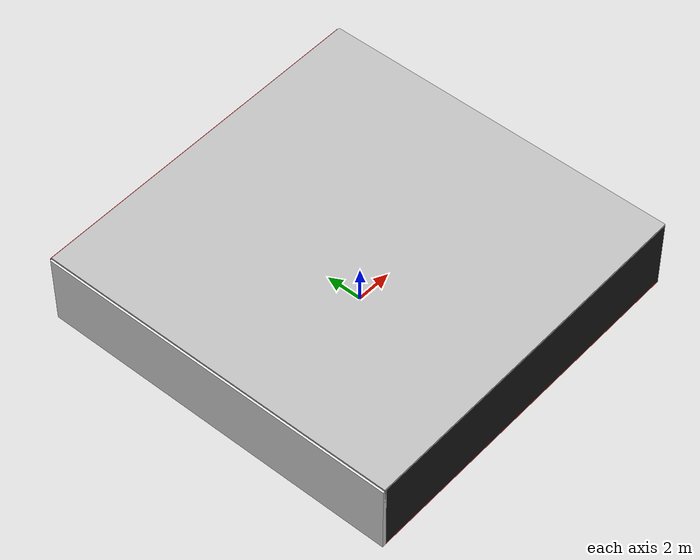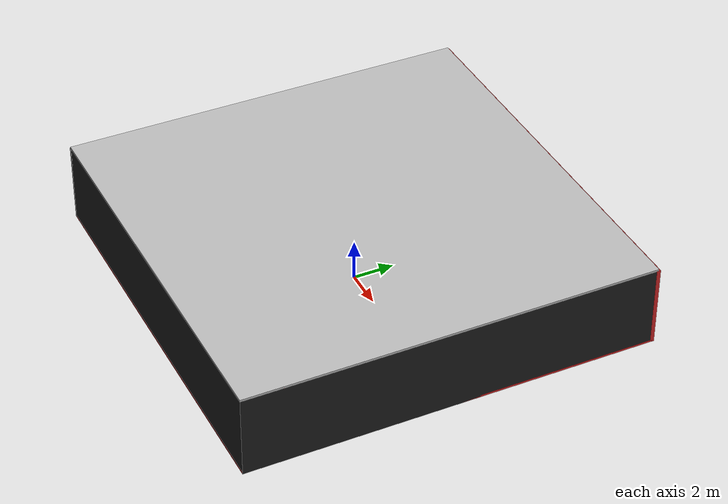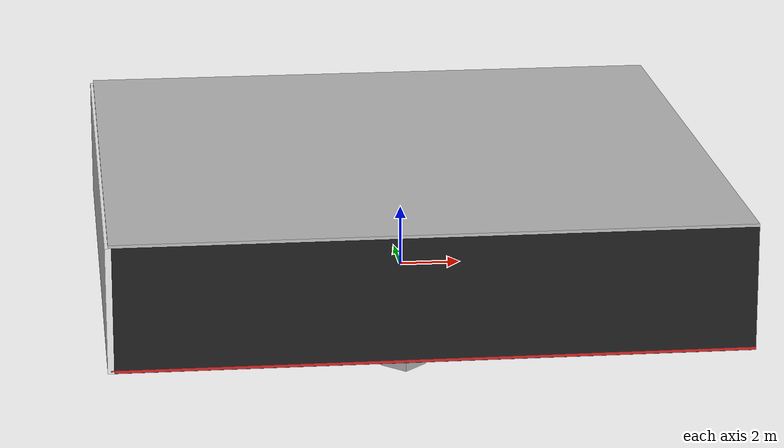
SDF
<sdf version="1.4">
 <world name="default">
  <physics type="ode">
   <max_step_size>0.001</max_step_size>
   <real_time_factor>1</real_time_factor>
   <real_time_update_rate>1000</real_time_update_rate>
   <gravity>0 0 -9.8</gravity>
  </physics>
  <scene><ambient>0.4 0.4 0.4 1</ambient><background>0.7 0.7 0.7 1</background><shadows>1</shadows></scene>
  <model name="Surrounding">
   <static>1</static>
   <link name="Ceiling">
    <collision name="Ceiling_Collision"><geometry><box><size>20 20 0.1</size></box></geometry></collision>
    <visual name="Ceiling_Visual">
     <geometry><box><size>20 20 0.1</size></box></geometry>
     <material>
      <script><uri>file://media/materials/scripts/gazebo.material</uri><name>Gazebo/Pioneer2Body</name></script>
     </material>
    </visual>
    <pose>0 0 4.05 0 0 0</pose>
   </link>
   <link name="Wall_South">
    <collision name="Wall_South_Collision">
     <geometry><box><size>20 0 4</size></box></geometry>
     <pose>0 0 2 0 -0 0</pose>
    </collision>
    <visual name="Wall_South_Visual">
     <pose>0 0 2 0 -0 0</pose>
     <geometry><box><size>20 0 4</size></box></geometry>
     <material>
      <script><uri>file://media/materials/scripts/gazebo.material</uri><name>Gazebo/FlatBlack</name></script>
     </material>
    </visual>
    <velocity_decay><linear>0</linear><angular>0</angular></velocity_decay>
    <pose>0 -10 0 0 -0 0</pose>
   </link>
   <link name="Wall_East">
    <collision name="Wall_21_Collision">
     <geometry><box><size>20 0 4</size></box></geometry>
     <pose>0 0 2 0 -0 0</pose>
    </collision>
    <visual name="Wall_21_Visual">
     <pose>0 0 2 0 -0 0</pose>
     <geometry><box><size>20 0 4</size></box></geometry>
     <material>
      <script><uri>file://media/materials/scripts/gazebo.material</uri><name>Gazebo/Black</name></script>
     </material>
    </visual>
    <velocity_decay><linear>0</linear><angular>0</angular></velocity_decay>
    <pose>10 0 0 0 -0 1.5708</pose>
   </link>
   <link name="Wall_North">
    <collision name="Wall_22_Collision">
     <geometry><box><size>20 0.2 4</size></box></geometry>
     <pose>0 0 2 0 -0 0</pose>
    </collision>
    <visual name="Wall_22_Visual">
     <pose>0 0 2 0 -0 0</pose>
     <geometry><box><size>20 0.2 4</size></box></geometry>
     <material>
      <script><uri>file://media/materials/scripts/gazebo.material</uri><name>Gazebo/RedBright</name></script>
     </material>
    </visual>
    <velocity_decay><linear>0</linear><angular>0</angular></velocity_decay>
    <pose>0 10 0 0 -0 0</pose>
   </link>
   <link name="Wall_West">
    <collision name="Wall_23_Collision">
     <geometry><box><size>20 0.2 4</size></box></geometry>
     <pose>0 0 2 0 -0 0</pose>
    </collision>
    <visual name="Wall_23_Visual">
     <pose>0 0 2 0 -0 0</pose>
     <geometry><box><size>20 0.2 4</size></box></geometry>
     <material>
      <script><uri>file://media/materials/scripts/gazebo.material</uri><name>Gazebo/White</name></script>
     </material>
    </visual>
    <velocity_decay><linear>0</linear><angular>0</angular></velocity_decay>
    <pose>-10 0 0 0 0 -1.5708</pose>
   </link>
   <link name="Ground_link">
    <collision name="collision">
     <pose>0 0 .05 0 -0 0</pose>
     <geometry><box><size>20 20 0.1</size></box></geometry>
    </collision>
    <visual name="visual">
     <pose>0 0 .05 0 -0 0</pose>
     <geometry><box><size>20 20 0.1</size></box></geometry>
     <material>
      <script><uri>file://media/materials/scripts/gazebo.material</uri><name>Gazebo/RedBright</name></script>
     </material>
    </visual>
   </link>
   <static>1</static>
  </model>
  <spherical_coordinates>
   <surface_model>EARTH_WGS84</surface_model>
   <latitude_deg>0</latitude_deg>
   <longitude_deg>0</longitude_deg>
   <elevation>0</elevation>
   <heading_deg>0</heading_deg>
  </spherical_coordinates>
  <light name="lightball_0" type="diffuse">
   <diffuse>0.8 0.8 0.8 1</diffuse>
   <specular>0.2 0.2 0.2 1</specular>
   <attenuation>
    <range>100</range>
    <constant>0.7</constant>
    <linear>0.01</linear>
    <quadratic>0.001</quadratic>
   </attenuation>
   <direction>-0.5 0.1 -0.9</direction>
   <pose>-1.3216404063 2.56554064209 2.18406077366 0 0 0</pose>
  </light>
  <light name="lightball_1" type="diffuse">
   <diffuse>0.8 0.8 0.8 1</diffuse>
   <specular>0.2 0.2 0.2 1</specular>
   <attenuation>
    <range>100</range>
    <constant>0.7</constant>
    <linear>0.01</linear>
    <quadratic>0.001</quadratic>
   </attenuation>
   <direction>-0.5 0.1 -0.9</direction>
   <pose>2.98152516699 -0.797116929233 1.64600222251 0 0 0</pose>
  </light>
  <light name="lightball_2" type="diffuse">
   <diffuse>0.8 0.8 0.8 1</diffuse>
   <specular>0.2 0.2 0.2 1</specular>
   <attenuation>
    <range>100</range>
    <constant>0.7</constant>
    <linear>0.01</linear>
    <quadratic>0.001</quadratic>
   </attenuation>
   <direction>-0.5 0.1 -0.9</direction>
   <pose>1.81858983552 7.48035954614 3.73109699626 0 0 0</pose>
  </light>
  <light name="lightball_3" type="diffuse">
   <diffuse>0.8 0.8 0.8 1</diffuse>
   <specular>0.2 0.2 0.2 1</specular>
   <attenuation>
    <range>100</range>
    <constant>0.7</constant>
    <linear>0.01</linear>
    <quadratic>0.001</quadratic>
   </attenuation>
   <direction>-0.5 0.1 -0.9</direction>
   <pose>-2.62028540349 6.09699061095 3.86946314864 0 0 0</pose>
  </light>
  <light name="lightball_4" type="diffuse">
   <diffuse>0.8 0.8 0.8 1</diffuse>
   <specular>0.2 0.2 0.2 1</specular>
   <attenuation>
    <range>100</range>
    <constant>0.7</constant>
    <linear>0.01</linear>
    <quadratic>0.001</quadratic>
   </attenuation>
   <direction>-0.5 0.1 -0.9</direction>
   <pose>6.38355377613 7.61002496559 0.735435392987 0 0 0</pose>
  </light>
  <include><uri>model://table</uri><pose>-6.31535383053 0.769688495924 0 0 0 1.93738675193</pose></include>
  <include>
   <uri>model://robocup_3Dsim_goal</uri>
   <pose>-5.13440350419 -4.45284043219 0 0 0 0.97263820223</pose>
  </include>
  <include><uri>model://cabinet</uri><pose>-4.94421417164 2.17692961222 0 0 0 0.457129174803</pose></include>
  <include>
   <uri>model://textured_shapes</uri>
   <pose>-5.43390135104 8.67312210051 0 0 0 1.68466850525</pose>
  </include>
  <include>
   <uri>model://textured_shapes</uri>
   <pose>-1.94276594975 -7.62781739123 0 0 0 0.784116637958</pose>
  </include>
  <include><uri>model://cabinet</uri><pose>-1.44542673742 2.49151479185 0 0 0 1.330681362</pose></include>
  <include><uri>model://cabinet</uri><pose>0.64630973876 -1.22674068789 0 0 0 1.11006847918</pose></include>
  <include>
   <uri>model://textured_shapes</uri>
   <pose>1.24338060365 1.25220424934 0 0 0 0.583212735317</pose>
  </include>
 </world>
</sdf>

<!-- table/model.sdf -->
<sdf version="1.5">
  <model name="table">
    <static>true</static>
    <link name="link">
      <collision name="surface">
        <pose>0 0 1.0 0 0 0</pose>
        <geometry>
          <box>
            <size>1.5 0.8 0.03</size>
          </box>
        </geometry>
        <surface>
          <friction>
            <ode>
              <mu>0.6</mu>
              <mu2>0.6</mu2>
            </ode>
          </friction>
        </surface>
      </collision>
      <visual name="visual1">
        <pose>0 0 1.0 0 0 0</pose>
        <geometry>
          <box>
            <size>1.5 0.8 0.03</size>
          </box>
        </geometry>
        <material>
          <script>
            <uri>model://media/materials/scripts/gazebo.material</uri>
            <name>Gazebo/Wood</name>
          </script>
        </material>
      </visual>
      <collision name="front_left_leg">
        <pose>0.68 0.38 0.5 0 0 0</pose>
        <geometry>
          <cylinder>
            <radius>0.02</radius>
            <length>1.0</length>
          </cylinder>
        </geometry>
      </collision>
      <visual name="front_left_leg">
        <pose>0.68 0.38 0.5 0 0 0</pose>
        <geometry>
          <cylinder>
            <radius>0.02</radius>
            <length>1.0</length>
          </cylinder>
        </geometry>
        <material>
          <script>
            <uri>model://media/materials/scripts/gazebo.material</uri>
            <name>Gazebo/Grey</name>
          </script>
        </material>
      </visual>
      <collision name="front_right_leg">
        <pose>0.68 -0.38 0.5 0 0 0</pose>
        <geometry>
          <cylinder>
            <radius>0.02</radius>
            <length>1.0</length>
          </cylinder>
        </geometry>
      </collision>
      <visual name="front_right_leg">
        <pose>0.68 -0.38 0.5 0 0 0</pose>
        <geometry>
          <cylinder>
            <radius>0.02</radius>
            <length>1.0</length>
          </cylinder>
        </geometry>
        <material>
          <script>
            <uri>model://media/materials/scripts/gazebo.material</uri>
            <name>Gazebo/Grey</name>
          </script>
        </material>
      </visual>
      <collision name="back_right_leg">
        <pose>-0.68 -0.38 0.5 0 0 0</pose>
        <geometry>
          <cylinder>
            <radius>0.02</radius>
            <length>1.0</length>
          </cylinder>
        </geometry>
      </collision>
      <visual name="back_right_leg">
        <pose>-0.68 -0.38 0.5 0 0 0</pose>
        <geometry>
          <cylinder>
            <radius>0.02</radius>
            <length>1.0</length>
          </cylinder>
        </geometry>
        <material>
          <script>
            <uri>model://media/materials/scripts/gazebo.material</uri>
            <name>Gazebo/Grey</name>
          </script>
        </material>
      </visual>
      <collision name="back_left_leg">
        <pose>-0.68 0.38 0.5 0 0 0</pose>
        <geometry>
          <cylinder>
            <radius>0.02</radius>
            <length>1.0</length>
          </cylinder>
        </geometry>
      </collision>
      <visual name="back_left_leg">
        <pose>-0.68 0.38 0.5 0 0 0</pose>
        <geometry>
          <cylinder>
            <radius>0.02</radius>
            <length>1.0</length>
          </cylinder>
        </geometry>
        <material>
          <script>
            <uri>model://media/materials/scripts/gazebo.material</uri>
            <name>Gazebo/Grey</name>
          </script>
        </material>
      </visual>
    </link>
  </model>
</sdf>

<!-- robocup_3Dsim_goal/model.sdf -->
<sdf version="1.5">
  <model name="robocup_3d_goal">
    <static>true</static>
    <link name="left_post">
      <pose>0 1.05 0.45 0 0 0</pose>
      <collision name="collision">
        <geometry>
          <cylinder>
            <radius>0.05</radius>
            <length>0.9</length>
          </cylinder>
        </geometry>
      </collision>
      <visual name="visual">
        <geometry>
          <cylinder>
            <radius>0.05</radius>
            <length>0.9</length>
          </cylinder>
        </geometry>
        <material>
          <script>
            <uri>file://media/materials/scripts/gazebo.material</uri>
            <name>Gazebo/ZincYellow</name>
          </script>
        </material>
      </visual>
    </link>
    <link name="left_support_horiz_lower">
      <pose>0.30 1.05 0.01 0 0 0</pose>
      <collision name="collision">
        <geometry>
          <box>
            <size>0.50 0.02 0.02</size>
          </box>
        </geometry>
      </collision>
      <visual name="visual">
        <geometry>
          <box>
            <size>0.50 0.02 0.02</size>
          </box>
        </geometry>
        <material>
          <script>
            <uri>file://media/materials/scripts/gazebo.material</uri>
            <name>Gazebo/White</name>
          </script>
        </material>
      </visual>
    </link>
    <link name="left_support_horiz_upper">
      <pose>0.30 1.05 0.79 0 0 0</pose>
      <collision name="collision">
        <geometry>
          <box>
            <size>0.50 0.02 0.02</size>
          </box>
        </geometry>
      </collision>
      <visual name="visual">
        <geometry>
          <box>
            <size>0.50 0.02 0.02</size>
          </box>
        </geometry>
        <material>
          <script>
            <uri>file://media/materials/scripts/gazebo.material</uri>
            <name>Gazebo/White</name>
          </script>
        </material>
      </visual>
    </link>
    <link name="left_support_vertical">
      <pose>0.56 1.05 0.4 0 1.5708 0</pose>
      <collision name="collision">
        <geometry>
          <box>
            <size>0.80 0.02 0.02</size>
          </box>
        </geometry>
      </collision>
      <visual name="visual">
        <geometry>
          <box>
            <size>0.80 0.02 0.02</size>
          </box>
        </geometry>
        <material>
          <script>
            <uri>file://media/materials/scripts/gazebo.material</uri>
            <name>Gazebo/White</name>
          </script>
        </material>
      </visual>
    </link>
    <link name="right_support_horiz_lower">
      <pose>0.30 -1.05 0.01 0 0 0</pose>
      <collision name="collision">
        <geometry>
          <box>
            <size>0.50 0.02 0.02</size>
          </box>
        </geometry>
      </collision>
      <visual name="visual">
        <geometry>
          <box>
            <size>0.50 0.02 0.02</size>
          </box>
        </geometry>
        <material>
          <script>
            <uri>file://media/materials/scripts/gazebo.material</uri>
            <name>Gazebo/White</name>
          </script>
        </material>
      </visual>
    </link>
    <link name="right_support_horiz_upper">
      <pose>0.30 -1.05 0.79 0 0 0</pose>
      <collision name="collision">
        <geometry>
          <box>
            <size>0.50 0.02 0.02</size>
          </box>
        </geometry>
      </collision>
      <visual name="visual">
        <geometry>
          <box>
            <size>0.50 0.02 0.02</size>
          </box>
        </geometry>
        <material>
          <script>
            <uri>file://media/materials/scripts/gazebo.material</uri>
            <name>Gazebo/White</name>
          </script>
        </material>
      </visual>
    </link>
    <link name="right_support_vertical">
      <pose>0.56 -1.05 0.4 0 1.5708 0</pose>
      <collision name="collision">
        <geometry>
          <box>
            <size>0.80 0.02 0.02</size>
          </box>
        </geometry>
      </collision>
      <visual name="visual">
        <geometry>
          <box>
            <size>0.80 0.02 0.02</size>
          </box>
        </geometry>
        <material>
          <script>
            <uri>file://media/materials/scripts/gazebo.material</uri>
            <name>Gazebo/White</name>
          </script>
        </material>
      </visual>
    </link>
    <link name="center_support_horiz_lower">
      <pose>0.56 0 0.01 0 1.5708 0</pose>
      <collision name="collision">
        <geometry>
          <box>
            <size>0.02 2.08 0.02</size>
          </box>
        </geometry>
      </collision>
      <visual name="visual">
        <geometry>
          <box>
            <size>0.02 2.08 0.02</size>
          </box>
        </geometry>
        <material>
          <script>
            <uri>file://media/materials/scripts/gazebo.material</uri>
            <name>Gazebo/White</name>
          </script>
        </material>
      </visual>
    </link>
    <link name="center_support_horiz_upper">
      <pose>0.56 0 0.79 0 1.5708 0</pose>
      <collision name="collision">
        <geometry>
          <box>
            <size>0.02 2.08 0.02</size>
          </box>
        </geometry>
      </collision>
      <visual name="visual">
        <geometry>
          <box>
            <size>0.02 2.08 0.02</size>
          </box>
        </geometry>
        <material>
          <script>
            <uri>file://media/materials/scripts/gazebo.material</uri>
            <name>Gazebo/White</name>
          </script>
        </material>
      </visual>
    </link>
    <link name="right_post">
      <pose>0 -1.05 0.45 0 0 0</pose>
      <collision name="collision">
        <geometry>
          <cylinder>
            <radius>0.05</radius>
            <length>0.9</length>
          </cylinder>
        </geometry>
      </collision>
      <visual name="visual">
        <geometry>
          <cylinder>
            <radius>0.05</radius>
            <length>0.9</length>
          </cylinder>
        </geometry>
        <material>
          <script>
            <uri>file://media/materials/scripts/gazebo.material</uri>
            <name>Gazebo/ZincYellow</name>
          </script>
        </material>
      </visual>
    </link>
    <link name="crossbar">
      <pose>0 0 0.85 1.57 1.57 0</pose>
      <collision name="collision">
        <geometry>
          <cylinder>
            <radius>0.05</radius>
            <length>2.0</length>
          </cylinder>
        </geometry>
      </collision>
      <visual name="visual">
        <geometry>
          <cylinder>
            <radius>0.05</radius>
            <length>2.0</length>
          </cylinder>
        </geometry>
        <material>
          <script>
            <uri>file://media/materials/scripts/gazebo.material</uri>
            <name>Gazebo/ZincYellow</name>
          </script>
        </material>
      </visual>
    </link>
    <link name="center_net">
      <pose>0.56 0 0.40 0 0 0</pose>
      <collision name="collision">
        <geometry>
          <box>
            <size>0.01 2.1 0.80</size>
          </box>
        </geometry>
      </collision>
      <visual name="visual">
        <geometry>
          <box>
            <size>0.01 2.1 0.80</size>
          </box>
        </geometry>
        <material>
          <script>
            <uri>model://../model_source/models/robocup09_spl_field/materials/scripts/</uri>
            <uri>model://../model_source/models/robocup09_spl_field/materials/textures/</uri>
            <name>RoboCup/Net</name>
          </script>
        </material>
      </visual>
    </link>
    <link name="left_net">
      <pose>0.30 1.05 0.40 0 0 0</pose>
      <collision name="collision">
        <geometry>
          <box>
            <size>0.50 0.01 0.76</size>
          </box>
        </geometry>
      </collision>
      <visual name="visual">
        <geometry>
          <box>
            <size>0.50 0.01 0.76</size>
          </box>
        </geometry>
        <material>
          <script>
            <uri>model://../model_source/models/robocup09_spl_field/materials/scripts/</uri>
            <uri>model://../model_source/models/robocup09_spl_field/materials/textures/</uri>
            <name>RoboCup/Net</name>
          </script>
        </material>
      </visual>
    </link>
    <link name="right_net">
      <pose>0.30 -1.05 0.40 0 0 0</pose>
      <collision name="collision">
        <geometry>
          <box>
            <size>0.50 0.01 0.76</size>
          </box>
        </geometry>
      </collision>
      <visual name="visual">
        <geometry>
          <box>
            <size>0.50 0.01 0.76</size>
          </box>
        </geometry>
        <material>
          <script>
            <uri>model://../model_source/models/robocup09_spl_field/materials/scripts/</uri>
            <uri>model://../model_source/models/robocup09_spl_field/materials/textures/</uri>
            <name>RoboCup/Net</name>
          </script>
        </material>
      </visual>
    </link>
  </model>
</sdf>

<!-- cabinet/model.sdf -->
<sdf version="1.5">
  <model name="cabinet">
    <static>true</static>
    <link name="cabinet_bottom_plate">
      <inertial>
        <pose>0 0 -1 0 0 0</pose>
        <inertia>
          <ixx>2.050000</ixx>
          <ixy>0</ixy>
          <ixz>0</ixz>
          <iyy>2.050000</iyy>
          <iyz>0</iyz>
          <izz>2.050000</izz>
        </inertia>
        <mass>25.000000</mass>
      </inertial>
      <collision name="cabinet_bottom_plate_geom">
        <pose>0 0 0.010000 0 0 0</pose>
        <geometry>
          <box>
            <size>0.450000 0.450000 0.020000</size>
          </box>
        </geometry>
      </collision>
      <visual name="cabinet_bottom_plate_geom_visual">
        <pose>0 0 0.010000 0 0 0</pose>
        <geometry>
          <box>
            <size>0.450000 0.450000 0.020000</size>
          </box>
        </geometry>
        <material>
          <script>
            <uri>model://media/materials/scripts/gazebo.material</uri>
            <name>Gazebo/Wood</name>
          </script>
        </material>
      </visual>
      <collision name="cabinet_bottom_plate_geom_cabinet_back_plate">
        <pose>0.235000 0 0.510000 0 0 0</pose>
        <geometry>
          <box>
            <size>0.020000 0.450000 1.020000</size>
          </box>
        </geometry>
      </collision>
      <visual name="cabinet_bottom_plate_geom_cabinet_back_plate_visual">
        <pose>0.235000 0 0.510000 0 0 0</pose>
        <geometry>
          <box>
            <size>0.020000 0.450000 1.020000</size>
          </box>
        </geometry>
        <material>
          <script>
            <uri>model://media/materials/scripts/gazebo.material</uri>
            <name>Gazebo/Wood</name>
          </script>
        </material>
      </visual>
      <collision name="cabinet_bottom_plate_geom_cabinet_left_plate">
        <pose>0 0.235000 0.510000 0 0 0</pose>
        <geometry>
          <box>
            <size>0.450000 0.020000 1.020000</size>
          </box>
        </geometry>
      </collision>
      <visual name="cabinet_bottom_plate_geom_cabinet_left_plate_visual">
        <pose>0 0.235000 0.510000 0 0 0</pose>
        <geometry>
          <box>
            <size>0.450000 0.020000 1.020000</size>
          </box>
        </geometry>
        <material>
          <script>
            <uri>model://media/materials/scripts/gazebo.material</uri>
            <name>Gazebo/Wood</name>
          </script>
        </material>
      </visual>
      <collision name="cabinet_bottom_plate_geom_cabinet_middle_plate">
        <pose>0 0 0.510000 0 0 0</pose>
        <geometry>
          <box>
            <size>0.450000 0.450000 0.020000</size>
          </box>
        </geometry>
      </collision>
      <visual name="cabinet_bottom_plate_geom_cabinet_middle_plate_visual">
        <pose>0 0 0.510000 0 0 0</pose>
        <geometry>
          <box>
            <size>0.450000 0.450000 0.020000</size>
          </box>
        </geometry>
        <material>
          <script>
            <uri>model://media/materials/scripts/gazebo.material</uri>
            <name>Gazebo/Wood</name>
          </script>
        </material>
      </visual>
      <collision name="cabinet_bottom_plate_geom_cabinet_right_plate">
        <pose>0 -0.235000 0.510000 0 0 0</pose>
        <geometry>
          <box>
            <size>0.450000 0.020000 1.020000</size>
          </box>
        </geometry>
      </collision>
      <visual name="cabinet_bottom_plate_geom_cabinet_right_plate_visual">
        <pose>0 -0.235000 0.510000 0 0 0</pose>
        <geometry>
          <box>
            <size>0.450000 0.020000 1.020000</size>
          </box>
        </geometry>
        <material>
          <script>
            <uri>model://media/materials/scripts/gazebo.material</uri>
            <name>Gazebo/Wood</name>
          </script>
        </material>
      </visual>
      <collision name="cabinet_bottom_plate_geom_cabinet_top_plate">
        <pose>0 0 1.010000 0 0 0</pose>
        <geometry>
          <box>
            <size>0.450000 0.450000 0.020000</size>
          </box>
        </geometry>
      </collision>
      <visual name="cabinet_bottom_plate_geom_cabinet_top_plate_visual">
        <pose>0 0 1.010000 0 0 0</pose>
        <geometry>
          <box>
            <size>0.450000 0.450000 0.020000</size>
          </box>
        </geometry>
        <material>
          <script>
            <uri>model://media/materials/scripts/gazebo.material</uri>
            <name>Gazebo/Wood</name>
          </script>
        </material>
      </visual>
    </link>
  </model>
</sdf>

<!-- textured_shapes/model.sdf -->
<sdf version="1.6">
  <model name="textured_shapes">
    <pose>0 0 0.5 0 0 0</pose>
    <link name="box">
      <pose>0 -1.5 0 0 0 0</pose>
      <collision name="collision">
        <geometry>
          <box>
            <size>1 1 1</size>
          </box>
        </geometry>
      </collision>
      <visual name="visual">
        <geometry>
          <box>
            <size>1 1 1</size>
          </box>
        </geometry>
        <material>
          <script>
            <uri>model://../model_source/models/textured_shapes/materials/scripts</uri>
            <uri>model://../model_source/models/textured_shapes/materials/textures</uri>
            <name>TexturedShape/Squares</name>
          </script>
        </material>
      </visual>
    </link>
    <link name="sphere">
      <collision name="collision">
        <geometry>
          <sphere>
            <radius>0.5</radius>
          </sphere>
        </geometry>
      </collision>
      <visual name="visual">
        <geometry>
          <sphere>
            <radius>0.5</radius>
          </sphere>
        </geometry>
        <material>
          <script>
            <uri>model://../model_source/models/textured_shapes/materials/scripts</uri>
            <uri>model://../model_source/models/textured_shapes/materials/textures</uri>
            <name>TexturedShape/Squares</name>
          </script>
        </material>
      </visual>
    </link>
    <link name="cylinder">
      <pose>0 1.5 0 0 0 0</pose>
      <collision name="collision">
        <geometry>
          <cylinder>
            <radius>0.5</radius>
            <length>1</length>
          </cylinder>
        </geometry>
      </collision>
      <visual name="visual">
        <geometry>
          <cylinder>
            <radius>0.5</radius>
            <length>1</length>
          </cylinder>
        </geometry>
        <material>
          <script>
            <uri>model://../model_source/models/textured_shapes/materials/scripts</uri>
            <uri>model://../model_source/models/textured_shapes/materials/textures</uri>
            <name>TexturedShape/Squares</name>
          </script>
        </material>
      </visual>
    </link>
  </model>
</sdf>
